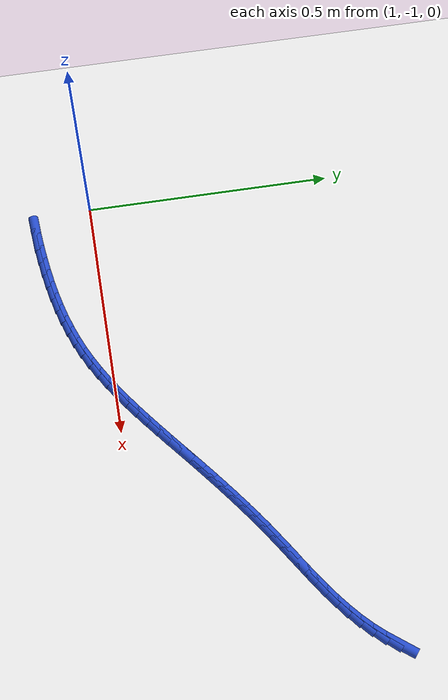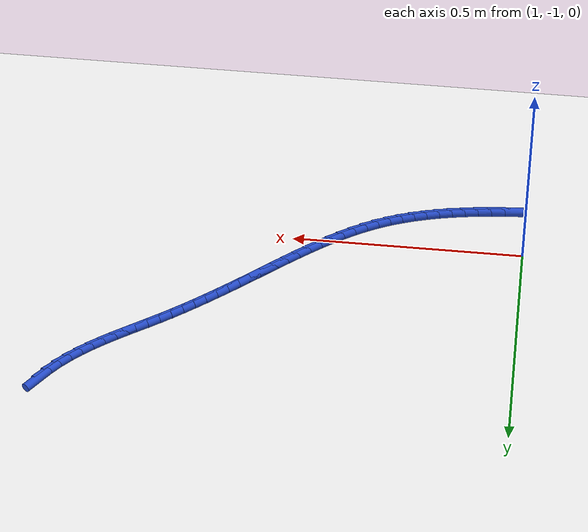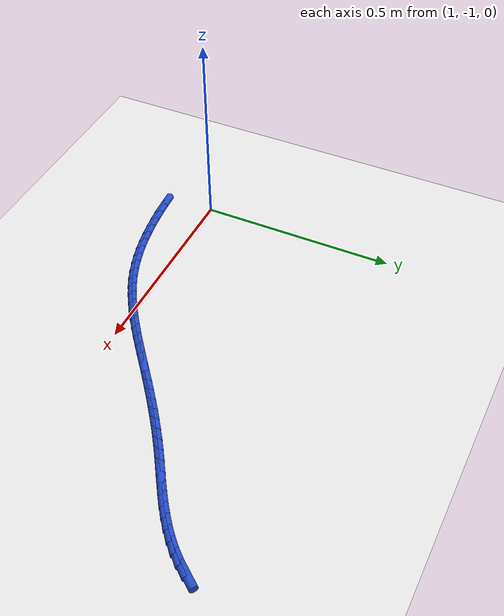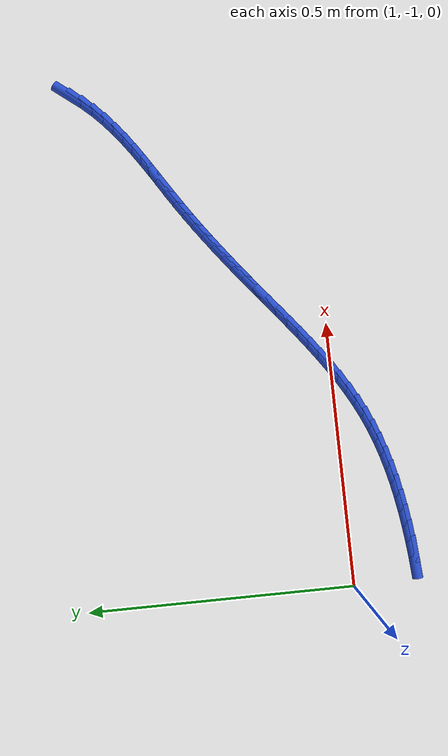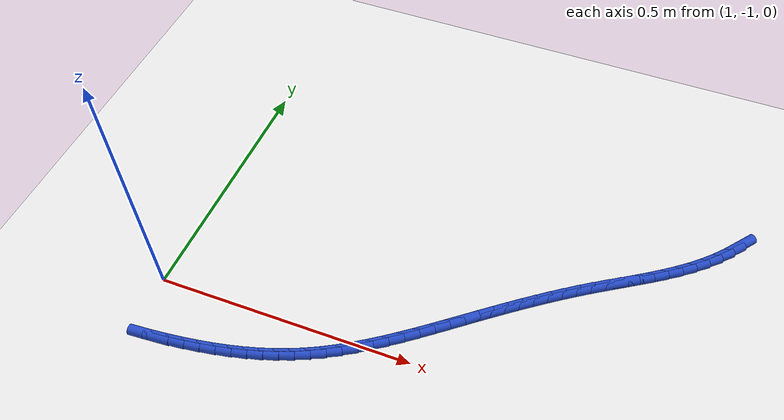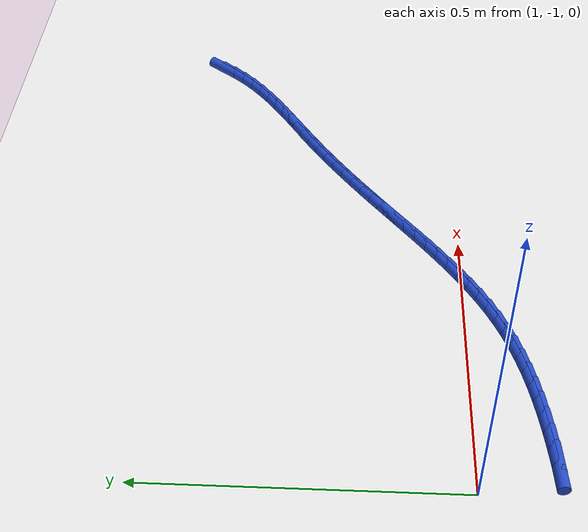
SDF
<sdf version="1.6">
 <world name="default">
  <model name="ground_plane">
   <static>1</static>
   <link name="link">
    <collision name="collision">
     <geometry><plane><normal>0 0 1</normal><size>100 100</size></plane></geometry>
     <surface><friction><ode><mu>100</mu><mu2>50</mu2></ode></friction></surface>
    </collision>
    <visual name="visual">
     <cast_shadows>0</cast_shadows>
     <geometry><plane><normal>0 0 1</normal><size>100 100</size></plane></geometry>
     <material>
      <script><uri>file://media/materials/scripts/gazebo.material</uri><name>Gazebo/WhiteGlow</name></script>
     </material>
    </visual>
   </link>
  </model>
  <model name="line">
   <link name="link_140">
    <pose>1.989430637850879 -0.5518854618059158 0.01 0 1.57 0.9092045008138666</pose>
    <collision name="collision">
     <geometry><cylinder><radius>0.01</radius><length>0.08</length></cylinder></geometry>
    </collision>
    <visual name="visual">
     <material>
      <script><name>Gazebo/Blue</name><uri>file://media/materials/scripts/gazebo.material</uri></script>
     </material>
     <geometry><cylinder><radius>0.01</radius><length>0.08</length></cylinder></geometry>
    </visual>
   </link>
   <link name="link_141">
    <pose>1.9723428384173465 -0.5738306338212589 0.01 0 1.57 0.8415528188620068</pose>
    <collision name="collision">
     <geometry><cylinder><radius>0.01</radius><length>0.08</length></cylinder></geometry>
    </collision>
    <visual name="visual">
     <material>
      <script><name>Gazebo/Blue</name><uri>file://media/materials/scripts/gazebo.material</uri></script>
     </material>
     <geometry><cylinder><radius>0.01</radius><length>0.08</length></cylinder></geometry>
    </visual>
   </link>
   <link name="link_142">
    <pose>1.9538839090354243 -0.5944884630910923 0.01 0 1.57 0.774004521325926</pose>
    <collision name="collision">
     <geometry><cylinder><radius>0.01</radius><length>0.08</length></cylinder></geometry>
    </collision>
    <visual name="visual">
     <material>
      <script><name>Gazebo/Blue</name><uri>file://media/materials/scripts/gazebo.material</uri></script>
     </material>
     <geometry><cylinder><radius>0.01</radius><length>0.08</length></cylinder></geometry>
    </visual>
   </link>
   <link name="link_143">
    <pose>1.9340923340909006 -0.6138341033177619 0.01 0 1.57 0.7154957164285846</pose>
    <collision name="collision">
     <geometry><cylinder><radius>0.01</radius><length>0.08</length></cylinder></geometry>
    </collision>
    <visual name="visual">
     <material>
      <script><name>Gazebo/Blue</name><uri>file://media/materials/scripts/gazebo.material</uri></script>
     </material>
     <geometry><cylinder><radius>0.01</radius><length>0.08</length></cylinder></geometry>
    </visual>
   </link>
   <link name="link_144">
    <pose>1.9131490153663124 -0.6320365701337849 0.01 0 1.57 0.6670701601685041</pose>
    <collision name="collision">
     <geometry><cylinder><radius>0.01</radius><length>0.08</length></cylinder></geometry>
    </collision>
    <visual name="visual">
     <material>
      <script><name>Gazebo/Blue</name><uri>file://media/materials/scripts/gazebo.material</uri></script>
     </material>
     <geometry><cylinder><radius>0.01</radius><length>0.08</length></cylinder></geometry>
    </visual>
   </link>
   <link name="link_145">
    <pose>1.8912483574201229 -0.6492832594697555 0.01 0 1.57 0.6286720355768992</pose>
    <collision name="collision">
     <geometry><cylinder><radius>0.01</radius><length>0.08</length></cylinder></geometry>
    </collision>
    <visual name="visual">
     <material>
      <script><name>Gazebo/Blue</name><uri>file://media/materials/scripts/gazebo.material</uri></script>
     </material>
     <geometry><cylinder><radius>0.01</radius><length>0.08</length></cylinder></geometry>
    </visual>
   </link>
   <link name="link_146">
    <pose>1.8685847648107963 -0.6657615672562686 0.01 0 1.57 0.6000988588178695</pose>
    <collision name="collision">
     <geometry><cylinder><radius>0.01</radius><length>0.08</length></cylinder></geometry>
    </collision>
    <visual name="visual">
     <material>
      <script><name>Gazebo/Blue</name><uri>file://media/materials/scripts/gazebo.material</uri></script>
     </material>
     <geometry><cylinder><radius>0.01</radius><length>0.08</length></cylinder></geometry>
    </visual>
   </link>
   <link name="link_147">
    <pose>1.8453526420967963 -0.681658889423919 0.01 0 1.57 0.5811154966232107</pose>
    <collision name="collision">
     <geometry><cylinder><radius>0.01</radius><length>0.08</length></cylinder></geometry>
    </collision>
    <visual name="visual">
     <material>
      <script><name>Gazebo/Blue</name><uri>file://media/materials/scripts/gazebo.material</uri></script>
     </material>
     <geometry><cylinder><radius>0.01</radius><length>0.08</length></cylinder></geometry>
    </visual>
   </link>
   <link name="link_148">
    <pose>1.8217463938365868 -0.6971626219033004 0.01 0 1.57 0.5715325563070818</pose>
    <collision name="collision">
     <geometry><cylinder><radius>0.01</radius><length>0.08</length></cylinder></geometry>
    </collision>
    <visual name="visual">
     <material>
      <script><name>Gazebo/Blue</name><uri>file://media/materials/scripts/gazebo.material</uri></script>
     </material>
     <geometry><cylinder><radius>0.01</radius><length>0.08</length></cylinder></geometry>
    </visual>
   </link>
   <link name="link_149">
    <pose>1.7979604245886311 -0.7124601606250077 0.01 0 1.57 0.5712541330028025</pose>
    <collision name="collision">
     <geometry><cylinder><radius>0.01</radius><length>0.08</length></cylinder></geometry>
    </collision>
    <visual name="visual">
     <material>
      <script><name>Gazebo/Blue</name><uri>file://media/materials/scripts/gazebo.material</uri></script>
     </material>
     <geometry><cylinder><radius>0.01</radius><length>0.08</length></cylinder></geometry>
    </visual>
   </link>
   <link name="link_150">
    <pose>1.7741891389113935 -0.7277389015196358 0.01 0 1.57 0.5803007376888554</pose>
    <collision name="collision">
     <geometry><cylinder><radius>0.01</radius><length>0.08</length></cylinder></geometry>
    </collision>
    <visual name="visual">
     <material>
      <script><name>Gazebo/Blue</name><uri>file://media/materials/scripts/gazebo.material</uri></script>
     </material>
     <geometry><cylinder><radius>0.01</radius><length>0.08</length></cylinder></geometry>
    </visual>
   </link>
   <link name="link_151">
    <pose>1.7506269407687653 -0.7431862400159723 0.01 0 1.57 0.5968161331320111</pose>
    <collision name="collision">
     <geometry><cylinder><radius>0.01</radius><length>0.08</length></cylinder></geometry>
    </collision>
    <visual name="visual">
     <material>
      <script><name>Gazebo/Blue</name><uri>file://media/materials/scripts/gazebo.material</uri></script>
     </material>
     <geometry><cylinder><radius>0.01</radius><length>0.08</length></cylinder></geometry>
    </visual>
   </link>
   <link name="link_152">
    <pose>1.7274238494025729 -0.7589521117374592 0.01 0 1.57 0.6134725327199605</pose>
    <collision name="collision">
     <geometry><cylinder><radius>0.01</radius><length>0.08</length></cylinder></geometry>
    </collision>
    <visual name="visual">
     <material>
      <script><name>Gazebo/Blue</name><uri>file://media/materials/scripts/gazebo.material</uri></script>
     </material>
     <geometry><cylinder><radius>0.01</radius><length>0.08</length></cylinder></geometry>
    </visual>
   </link>
   <link name="link_153">
    <pose>1.7045648323732256 -0.775047152035507 0.01 0 1.57 0.6284814207940111</pose>
    <collision name="collision">
     <geometry><cylinder><radius>0.01</radius><length>0.08</length></cylinder></geometry>
    </collision>
    <visual name="visual">
     <material>
      <script><name>Gazebo/Blue</name><uri>file://media/materials/scripts/gazebo.material</uri></script>
     </material>
     <geometry><cylinder><radius>0.01</radius><length>0.08</length></cylinder></geometry>
    </visual>
   </link>
   <link name="link_154">
    <pose>1.681996499424794 -0.7914496230423917 0.01 0 1.57 0.6417759916966104</pose>
    <collision name="collision">
     <geometry><cylinder><radius>0.01</radius><length>0.08</length></cylinder></geometry>
    </collision>
    <visual name="visual">
     <material>
      <script><name>Gazebo/Blue</name><uri>file://media/materials/scripts/gazebo.material</uri></script>
     </material>
     <geometry><cylinder><radius>0.01</radius><length>0.08</length></cylinder></geometry>
    </visual>
   </link>
   <link name="link_155">
    <pose>1.659665460301345 -0.8081377868903903 0.01 0 1.57 0.653304442158712</pose>
    <collision name="collision">
     <geometry><cylinder><radius>0.01</radius><length>0.08</length></cylinder></geometry>
    </collision>
    <visual name="visual">
     <material>
      <script><name>Gazebo/Blue</name><uri>file://media/materials/scripts/gazebo.material</uri></script>
     </material>
     <geometry><cylinder><radius>0.01</radius><length>0.08</length></cylinder></geometry>
    </visual>
   </link>
   <link name="link_156">
    <pose>1.6375183247469498 -0.8250899057117783 0.01 0 1.57 0.6630295018339772</pose>
    <collision name="collision">
     <geometry><cylinder><radius>0.01</radius><length>0.08</length></cylinder></geometry>
    </collision>
    <visual name="visual">
     <material>
      <script><name>Gazebo/Blue</name><uri>file://media/materials/scripts/gazebo.material</uri></script>
     </material>
     <geometry><cylinder><radius>0.01</radius><length>0.08</length></cylinder></geometry>
    </visual>
   </link>
   <link name="link_157">
    <pose>1.6155017025056755 -0.8422842416388314 0.01 0 1.57 0.6709277733773216</pose>
    <collision name="collision">
     <geometry><cylinder><radius>0.01</radius><length>0.08</length></cylinder></geometry>
    </collision>
    <visual name="visual">
     <material>
      <script><name>Gazebo/Blue</name><uri>file://media/materials/scripts/gazebo.material</uri></script>
     </material>
     <geometry><cylinder><radius>0.01</radius><length>0.08</length></cylinder></geometry>
    </visual>
   </link>
   <link name="link_158">
    <pose>1.5935622033215928 -0.8596990568038272 0.01 0 1.57 0.6769889398636901</pose>
    <collision name="collision">
     <geometry><cylinder><radius>0.01</radius><length>0.08</length></cylinder></geometry>
    </collision>
    <visual name="visual">
     <material>
      <script><name>Gazebo/Blue</name><uri>file://media/materials/scripts/gazebo.material</uri></script>
     </material>
     <geometry><cylinder><radius>0.01</radius><length>0.08</length></cylinder></geometry>
    </visual>
   </link>
   <link name="link_159">
    <pose>1.5716464369863354 -0.8773126127852092 0.01 0 1.57 0.680688980265241</pose>
    <collision name="collision">
     <geometry><cylinder><radius>0.01</radius><length>0.08</length></cylinder></geometry>
    </collision>
    <visual name="visual">
     <material>
      <script><name>Gazebo/Blue</name><uri>file://media/materials/scripts/gazebo.material</uri></script>
     </material>
     <geometry><cylinder><radius>0.01</radius><length>0.08</length></cylinder></geometry>
    </visual>
   </link>
   <link name="link_160">
    <pose>1.5497027782388917 -0.8950826213863711 0.01 0 1.57 0.6801416105197877</pose>
    <collision name="collision">
     <geometry><cylinder><radius>0.01</radius><length>0.08</length></cylinder></geometry>
    </collision>
    <visual name="visual">
     <material>
      <script><name>Gazebo/Blue</name><uri>file://media/materials/scripts/gazebo.material</uri></script>
     </material>
     <geometry><cylinder><radius>0.01</radius><length>0.08</length></cylinder></geometry>
    </visual>
   </link>
   <link name="link_161">
    <pose>1.5276860370860221 -0.9128918667903851 0.01 0 1.57 0.6749435679773539</pose>
    <collision name="collision">
     <geometry><cylinder><radius>0.01</radius><length>0.08</length></cylinder></geometry>
    </collision>
    <visual name="visual">
     <material>
      <script><name>Gazebo/Blue</name><uri>file://media/materials/scripts/gazebo.material</uri></script>
     </material>
     <geometry><cylinder><radius>0.01</radius><length>0.08</length></cylinder></geometry>
    </visual>
   </link>
   <link name="link_162">
    <pose>1.5055524898104937 -0.9306060609191602 0.01 0 1.57 0.6650833599495422</pose>
    <collision name="collision">
     <geometry><cylinder><radius>0.01</radius><length>0.08</length></cylinder></geometry>
    </collision>
    <visual name="visual">
     <material>
      <script><name>Gazebo/Blue</name><uri>file://media/materials/scripts/gazebo.material</uri></script>
     </material>
     <geometry><cylinder><radius>0.01</radius><length>0.08</length></cylinder></geometry>
    </visual>
   </link>
   <link name="link_163">
    <pose>1.4832584126950772 -0.948090915694604 0.01 0 1.57 0.6505039536722689</pose>
    <collision name="collision">
     <geometry><cylinder><radius>0.01</radius><length>0.08</length></cylinder></geometry>
    </collision>
    <visual name="visual">
     <material>
      <script><name>Gazebo/Blue</name><uri>file://media/materials/scripts/gazebo.material</uri></script>
     </material>
     <geometry><cylinder><radius>0.01</radius><length>0.08</length></cylinder></geometry>
    </visual>
   </link>
   <link name="link_164">
    <pose>1.4607600820225402 -0.9652121430386257 0.01 0 1.57 0.6311083285516392</pose>
    <collision name="collision">
     <geometry><cylinder><radius>0.01</radius><length>0.08</length></cylinder></geometry>
    </collision>
    <visual name="visual">
     <material>
      <script><name>Gazebo/Blue</name><uri>file://media/materials/scripts/gazebo.material</uri></script>
     </material>
     <geometry><cylinder><radius>0.01</radius><length>0.08</length></cylinder></geometry>
    </visual>
   </link>
   <link name="link_165">
    <pose>1.4380137740756507 -0.9818354548731338 0.01 0 1.57 0.6067677336534222</pose>
    <collision name="collision">
     <geometry><cylinder><radius>0.01</radius><length>0.08</length></cylinder></geometry>
    </collision>
    <visual name="visual">
     <material>
      <script><name>Gazebo/Blue</name><uri>file://media/materials/scripts/gazebo.material</uri></script>
     </material>
     <geometry><cylinder><radius>0.01</radius><length>0.08</length></cylinder></geometry>
    </visual>
   </link>
   <link name="link_166">
    <pose>1.4149757651371773 -0.9978265631200369 0.01 0 1.57 0.5773335987920531</pose>
    <collision name="collision">
     <geometry><cylinder><radius>0.01</radius><length>0.08</length></cylinder></geometry>
    </collision>
    <visual name="visual">
     <material>
      <script><name>Gazebo/Blue</name><uri>file://media/materials/scripts/gazebo.material</uri></script>
     </material>
     <geometry><cylinder><radius>0.01</radius><length>0.08</length></cylinder></geometry>
    </visual>
   </link>
   <link name="link_167">
    <pose>1.3916023314898893 -1.0130511797012443 0.01 0 1.57 0.5426542587310068</pose>
    <collision name="collision">
     <geometry><cylinder><radius>0.01</radius><length>0.08</length></cylinder></geometry>
    </collision>
    <visual name="visual">
     <material>
      <script><name>Gazebo/Blue</name><uri>file://media/materials/scripts/gazebo.material</uri></script>
     </material>
     <geometry><cylinder><radius>0.01</radius><length>0.08</length></cylinder></geometry>
    </visual>
   </link>
   <link name="link_168">
    <pose>1.3678497494165547 -1.0273750165386635 0.01 0 1.57 0.5025976660357717</pose>
    <collision name="collision">
     <geometry><cylinder><radius>0.01</radius><length>0.08</length></cylinder></geometry>
    </collision>
    <visual name="visual">
     <material>
      <script><name>Gazebo/Blue</name><uri>file://media/materials/scripts/gazebo.material</uri></script>
     </material>
     <geometry><cylinder><radius>0.01</radius><length>0.08</length></cylinder></geometry>
    </visual>
   </link>
   <link name="link_169">
    <pose>1.3436742951999416 -1.0406637855542038 0.01 0 1.57 0.45708091552307445</pose>
    <collision name="collision">
     <geometry><cylinder><radius>0.01</radius><length>0.08</length></cylinder></geometry>
    </collision>
    <visual name="visual">
     <material>
      <script><name>Gazebo/Blue</name><uri>file://media/materials/scripts/gazebo.material</uri></script>
     </material>
     <geometry><cylinder><radius>0.01</radius><length>0.08</length></cylinder></geometry>
    </visual>
   </link>
   <link name="link_170">
    <pose>1.3190322451228185 -1.052783198669774 0.01 0 1.57 0.4072452921299173</pose>
    <collision name="collision">
     <geometry><cylinder><radius>0.01</radius><length>0.08</length></cylinder></geometry>
    </collision>
    <visual name="visual">
     <material>
      <script><name>Gazebo/Blue</name><uri>file://media/materials/scripts/gazebo.material</uri></script>
     </material>
     <geometry><cylinder><radius>0.01</radius><length>0.08</length></cylinder></geometry>
    </visual>
   </link>
   <link name="link_171">
    <pose>1.2938866191293252 -1.0636300166239654 0.01 0 1.57 0.35868099460316744</pose>
    <collision name="collision">
     <geometry><cylinder><radius>0.01</radius><length>0.08</length></cylinder></geometry>
    </collision>
    <visual name="visual">
     <material>
      <script><name>Gazebo/Blue</name><uri>file://media/materials/scripts/gazebo.material</uri></script>
     </material>
     <geometry><cylinder><radius>0.01</radius><length>0.08</length></cylinder></geometry>
    </visual>
   </link>
   <link name="link_172">
    <pose>1.2682323122357486 -1.0732477577129504 0.01 0 1.57 0.31333019034248744</pose>
    <collision name="collision">
     <geometry><cylinder><radius>0.01</radius><length>0.08</length></cylinder></geometry>
    </collision>
    <visual name="visual">
     <material>
      <script><name>Gazebo/Blue</name><uri>file://media/materials/scripts/gazebo.material</uri></script>
     </material>
     <geometry><cylinder><radius>0.01</radius><length>0.08</length></cylinder></geometry>
    </visual>
   </link>
   <link name="link_173">
    <pose>1.2420736280454652 -1.0817232587626657 0.01 0 1.57 0.27146544580350457</pose>
    <collision name="collision">
     <geometry><cylinder><radius>0.01</radius><length>0.08</length></cylinder></geometry>
    </collision>
    <visual name="visual">
     <material>
      <script><name>Gazebo/Blue</name><uri>file://media/materials/scripts/gazebo.material</uri></script>
     </material>
     <geometry><cylinder><radius>0.01</radius><length>0.08</length></cylinder></geometry>
    </visual>
   </link>
   <link name="link_174">
    <pose>1.2154148715335016 -1.0891433629143237 0.01 0 1.57 0.2332617540568741</pose>
    <collision name="collision">
     <geometry><cylinder><radius>0.01</radius><length>0.08</length></cylinder></geometry>
    </collision>
    <visual name="visual">
     <material>
      <script><name>Gazebo/Blue</name><uri>file://media/materials/scripts/gazebo.material</uri></script>
     </material>
     <geometry><cylinder><radius>0.01</radius><length>0.08</length></cylinder></geometry>
    </visual>
   </link>
   <link name="link_175">
    <pose>1.1882603476748834 -1.0955949133091363 0.01 0 1.57 0.1988087229520721</pose>
    <collision name="collision">
     <geometry><cylinder><radius>0.01</radius><length>0.08</length></cylinder></geometry>
    </collision>
    <visual name="visual">
     <material>
      <script><name>Gazebo/Blue</name><uri>file://media/materials/scripts/gazebo.material</uri></script>
     </material>
     <geometry><cylinder><radius>0.01</radius><length>0.08</length></cylinder></geometry>
    </visual>
   </link>
   <link name="link_176">
    <pose>1.160614361444637 -1.1011647530883168 0.01 0 1.57 0.16812544334448828</pose>
    <collision name="collision">
     <geometry><cylinder><radius>0.01</radius><length>0.08</length></cylinder></geometry>
    </collision>
    <visual name="visual">
     <material>
      <script><name>Gazebo/Blue</name><uri>file://media/materials/scripts/gazebo.material</uri></script>
     </material>
     <geometry><cylinder><radius>0.01</radius><length>0.08</length></cylinder></geometry>
    </visual>
   </link>
   <link name="link_177">
    <pose>1.1324812178177872 -1.105939725393078 0.01 0 1.57 0.14117603982539634</pose>
    <collision name="collision">
     <geometry><cylinder><radius>0.01</radius><length>0.08</length></cylinder></geometry>
    </collision>
    <visual name="visual">
     <material>
      <script><name>Gazebo/Blue</name><uri>file://media/materials/scripts/gazebo.material</uri></script>
     </material>
     <geometry><cylinder><radius>0.01</radius><length>0.08</length></cylinder></geometry>
    </visual>
   </link>
   <link name="link_178">
    <pose>1.1038652217693623 -1.1100066733646319 0.01 0 1.57 0.11788250793809461</pose>
    <collision name="collision">
     <geometry><cylinder><radius>0.01</radius><length>0.08</length></cylinder></geometry>
    </collision>
    <visual name="visual">
     <material>
      <script><name>Gazebo/Blue</name><uri>file://media/materials/scripts/gazebo.material</uri></script>
     </material>
     <geometry><cylinder><radius>0.01</radius><length>0.08</length></cylinder></geometry>
    </visual>
   </link>
   <link name="link_179">
    <pose>1.0747707172232834 -1.1134523821851505 0.01 0 1.57 0.09576798153527888</pose>
    <collision name="collision">
     <geometry><cylinder><radius>0.01</radius><length>0.08</length></cylinder></geometry>
    </collision>
    <visual name="visual">
     <material>
      <script><name>Gazebo/Blue</name><uri>file://media/materials/scripts/gazebo.material</uri></script>
     </material>
     <geometry><cylinder><radius>0.01</radius><length>0.08</length></cylinder></geometry>
    </visual>
   </link>
   <link name="link_180">
    <pose>1.0452529340612757 -1.1162879147043854 0.01 0 1.57 0.06755483199734962</pose>
    <collision name="collision">
     <geometry><cylinder><radius>0.01</radius><length>0.08</length></cylinder></geometry>
    </collision>
    <visual name="visual">
     <material>
      <script><name>Gazebo/Blue</name><uri>file://media/materials/scripts/gazebo.material</uri></script>
     </material>
     <geometry><cylinder><radius>0.01</radius><length>0.08</length></cylinder></geometry>
    </visual>
   </link>
  </model>
 </world>
</sdf>
